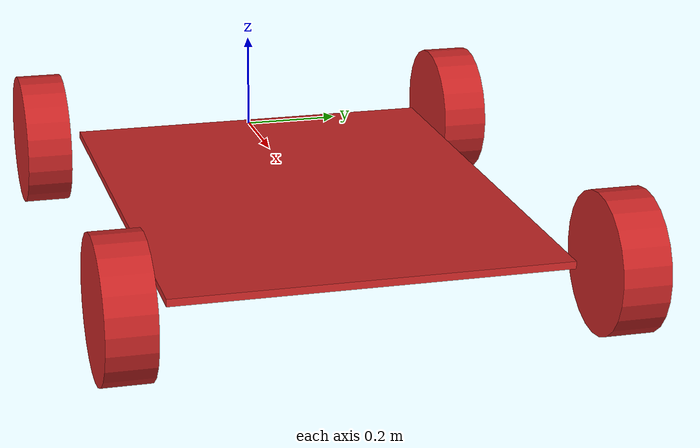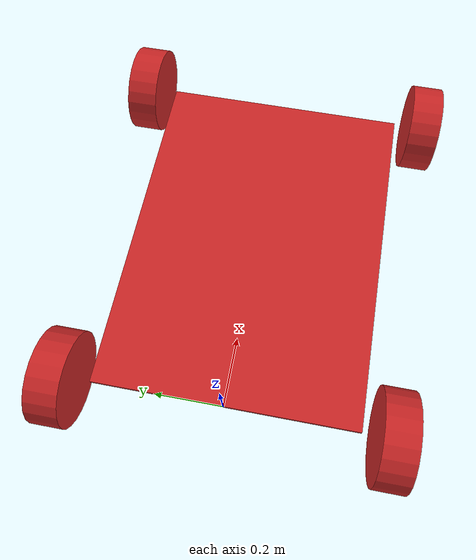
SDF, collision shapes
<?xml version="1.0" ?>
<sdf version='1.7'>
  <model name='gokart'>
    <link name='base_link'>
      <inertial>
        <pose>0.509065 0 0.019448 0 -0 0</pose>
        <mass>79.7</mass>
        <inertia>
          <ixx>6.47708</ixx>
          <ixy>2.77556e-16</ixy>
          <ixz>0.401551</ixz>
          <iyy>7.93038</iyy>
          <iyz>-2.3187e-18</iyz>
          <izz>13.3492</izz>
        </inertia>
      </inertial>
      <collision name='base_link_fixed_joint_lump__body_frame_link_collision'>
        <pose>0.525 0 0 0 -0 0</pose>
        <geometry>
          <box>
            <size>1.05 0.78 0.015</size>
          </box>
        </geometry>
        <surface>
          <contact>
            <ode/>
          </contact>
          <friction>
            <ode/>
          </friction>
        </surface>
      </collision>
      <collision name='base_link_fixed_joint_lump__wheel_fl_link_collision_1'>
        <pose>1.05 0.475 0 1.5708 -0 0</pose>
        <geometry>
          <cylinder>
            <length>0.09525</length>
            <radius>0.1397</radius>
          </cylinder>
        </geometry>
        <surface>
          <friction>
            <ode>
              <mu>1.3</mu>
              <mu2>1.3</mu2>
            </ode>
          </friction>
          <contact>
            <ode/>
          </contact>
        </surface>
      </collision>
      <collision name='base_link_fixed_joint_lump__wheel_fr_link_collision_2'>
        <pose>1.05 -0.475 0 1.5708 -0 0</pose>
        <geometry>
          <cylinder>
            <length>0.09525</length>
            <radius>0.1397</radius>
          </cylinder>
        </geometry>
        <surface>
          <friction>
            <ode>
              <mu>1.3</mu>
              <mu2>1.3</mu2>
            </ode>
          </friction>
          <contact>
            <ode/>
          </contact>
        </surface>
      </collision>
      <collision name='base_link_fixed_joint_lump__wheel_rl_link_collision_3'>
        <pose>0 0.475 0 1.5708 -0 0</pose>
        <geometry>
          <cylinder>
            <length>0.09525</length>
            <radius>0.1397</radius>
          </cylinder>
        </geometry>
      </collision>
      <collision name='base_link_fixed_joint_lump__wheel_rr_link_collision_4'>
        <pose>0 -0.475 0 1.5708 -0 0</pose>
        <geometry>
          <cylinder>
            <length>0.09525</length>
            <radius>0.1397</radius>
          </cylinder>
        </geometry>
      </collision>
      <visual name='base_link_fixed_joint_lump__body_frame_link_visual'>
        <pose>0 0 -0.015 0 -0 0</pose>
        <geometry>
          <mesh>
            <scale>1 1 1</scale>
            <uri>file:///home/michael/Desktop/projects/roar-gokart-ws/install/roar-urdf/share/roar-urdf/meshes/gokart/BodyV1.stl</uri>
          </mesh>
        </geometry>
        <material>
          <script>
            <name>Gazebo/Red</name>
            <uri>file://media/materials/scripts/gazebo.material</uri>
          </script>
        </material>
      </visual>
      <visual name='base_link_fixed_joint_lump__compute_front_left_stand_off_visual_1'>
        <pose>0.5 0.3 0.15 0 -0 0</pose>
        <geometry>
          <box>
            <size>0.1 0.1 0.3</size>
          </box>
        </geometry>
      </visual>
      <visual name='base_link_fixed_joint_lump__compute_front_right_stand_off_visual_2'>
        <pose>0.5 -0.3 0.15 0 -0 0</pose>
        <geometry>
          <box>
            <size>0.1 0.1 0.3</size>
          </box>
        </geometry>
      </visual>
      <visual name='base_link_fixed_joint_lump__compute_rear_left_stand_off_visual_3'>
        <pose>0 0.3 0.15 0 -0 0</pose>
        <geometry>
          <box>
            <size>0.1 0.1 0.3</size>
          </box>
        </geometry>
      </visual>
      <visual name='base_link_fixed_joint_lump__compute_rear_right_stand_off_visual_4'>
        <pose>0 -0.3 0.15 0 -0 0</pose>
        <geometry>
          <box>
            <size>0.1 0.1 0.3</size>
          </box>
        </geometry>
      </visual>
      <visual name='base_link_fixed_joint_lump__compute_platform_visual_5'>
        <pose>0.25 0 0.3 0 -0 0</pose>
        <geometry>
          <box>
            <size>0.7 0.7 0.01</size>
          </box>
        </geometry>
      </visual>
      <visual name='base_link_fixed_joint_lump__antenna_front_left_stand_off_visual_6'>
        <pose>0.15 0.3 0.4 0 -0 0</pose>
        <geometry>
          <box>
            <size>0.05 0.05 0.2</size>
          </box>
        </geometry>
      </visual>
      <visual name='base_link_fixed_joint_lump__antenna_front_right_stand_off_visual_7'>
        <pose>0.15 -0.3 0.4 0 -0 0</pose>
        <geometry>
          <box>
            <size>0.05 0.05 0.2</size>
          </box>
        </geometry>
      </visual>
      <visual name='base_link_fixed_joint_lump__antenna_rear_left_stand_off_visual_8'>
        <pose>-0.05 0.3 0.4 0 -0 0</pose>
        <geometry>
          <box>
            <size>0.05 0.05 0.2</size>
          </box>
        </geometry>
      </visual>
      <visual name='base_link_fixed_joint_lump__antenna_rear_right_stand_off_visual_9'>
        <pose>-0.05 -0.3 0.4 0 -0 0</pose>
        <geometry>
          <box>
            <size>0.05 0.05 0.2</size>
          </box>
        </geometry>
      </visual>
      <visual name='base_link_fixed_joint_lump__compute_units_link_visual_10'>
        <pose>0.35 0 0.31 0 -0 0</pose>
        <geometry>
          <box>
            <size>0.397 0.284 0.0259</size>
          </box>
        </geometry>
      </visual>
      <visual name='base_link_fixed_joint_lump__gps_platform_visual_11'>
        <pose>0.05 0 0.5 0 -0 0</pose>
        <geometry>
          <box>
            <size>0.3 0.7 0.01</size>
          </box>
        </geometry>
      </visual>
      <visual name='base_link_fixed_joint_lump__gnss_visual_12'>
        <pose>0.05 0 0.6 1.57 -0 1.57</pose>
        <geometry>
          <mesh>
            <scale>0.001 0.001 0.001</scale>
            <uri>file:///home/michael/Desktop/projects/roar-gokart-ws/install/roar-urdf/share/roar-urdf/meshes/gps_antenna.stl</uri>
          </mesh>
        </geometry>
      </visual>
      <visual name='base_link_fixed_joint_lump__perception_front_left_stand_off_visual_13'>
        <pose>1.05 0.2 0.15 0 -0 0</pose>
        <geometry>
          <box>
            <size>0.05 0.05 0.3</size>
          </box>
        </geometry>
      </visual>
      <visual name='base_link_fixed_joint_lump__perception_front_right_stand_off_visual_14'>
        <pose>1.05 -0.2 0.15 0 -0 0</pose>
        <geometry>
          <box>
            <size>0.05 0.05 0.3</size>
          </box>
        </geometry>
      </visual>
      <visual name='base_link_fixed_joint_lump__perception_rear_left_stand_off_visual_15'>
        <pose>0.8 0.2 0.15 0 -0 0</pose>
        <geometry>
          <box>
            <size>0.05 0.05 0.3</size>
          </box>
        </geometry>
      </visual>
      <visual name='base_link_fixed_joint_lump__perception_rear_right_stand_off_visual_16'>
        <pose>0.8 -0.2 0.15 0 -0 0</pose>
        <geometry>
          <box>
            <size>0.05 0.05 0.3</size>
          </box>
        </geometry>
      </visual>
      <visual name='base_link_fixed_joint_lump__sensor_platform_lower_visual_17'>
        <pose>0.925 0 0.15 0 -0 0</pose>
        <geometry>
          <box>
            <size>0.3 0.5 0.01</size>
          </box>
        </geometry>
      </visual>
      <visual name='base_link_fixed_joint_lump__sensor_platform_upper_visual_18'>
        <pose>0.925 0 0.3 0 -0 0</pose>
        <geometry>
          <box>
            <size>0.3 0.5 0.01</size>
          </box>
        </geometry>
      </visual>
      <visual name='base_link_fixed_joint_lump__center_lidar_visual_19'>
        <pose>1.075 0.04 0.31 1.57 0 3.14</pose>
        <geometry>
          <mesh>
            <scale>0.001 0.001 0.001</scale>
            <uri>file:///home/michael/Desktop/projects/roar-gokart-ws/install/roar-urdf/share/roar-urdf/meshes/livox_horizon.stl</uri>
          </mesh>
        </geometry>
      </visual>
      <visual name='base_link_fixed_joint_lump__camera_visual_20'>
        <pose>1.025 0 0.41 0 -0 1.57</pose>
        <geometry>
          <mesh>
            <scale>0.001 0.001 0.001</scale>
            <uri>file:///home/michael/Desktop/projects/roar-gokart-ws/install/roar-urdf/share/roar-urdf/meshes/ZED2i.stl</uri>
          </mesh>
        </geometry>
      </visual>
      <visual name='base_link_fixed_joint_lump__wheel_fl_link_visual_21'>
        <pose>1.05 0.57025 0 1.5708 -0 0</pose>
        <geometry>
          <mesh>
            <scale>1 1 1</scale>
            <uri>file:///home/michael/Desktop/projects/roar-gokart-ws/install/roar-urdf/share/roar-urdf/meshes/gokart/WheelV1.stl</uri>
          </mesh>
        </geometry>
        <material>
          <script>
            <name>Gazebo/Grey</name>
            <uri>file://media/materials/scripts/gazebo.material</uri>
          </script>
        </material>
      </visual>
      <visual name='base_link_fixed_joint_lump__wheel_fr_link_visual_22'>
        <pose>1.05 -0.37975 0 1.5708 -0 0</pose>
        <geometry>
          <mesh>
            <scale>1 1 1</scale>
            <uri>file:///home/michael/Desktop/projects/roar-gokart-ws/install/roar-urdf/share/roar-urdf/meshes/gokart/WheelV1.stl</uri>
          </mesh>
        </geometry>
        <material>
          <script>
            <name>Gazebo/Grey</name>
            <uri>file://media/materials/scripts/gazebo.material</uri>
          </script>
        </material>
      </visual>
      <visual name='base_link_fixed_joint_lump__wheel_rl_link_visual_23'>
        <pose>0 0.57025 0 1.5708 -0 0</pose>
        <geometry>
          <mesh>
            <scale>1 1 1</scale>
            <uri>file:///home/michael/Desktop/projects/roar-gokart-ws/install/roar-urdf/share/roar-urdf/meshes/gokart/WheelV1.stl</uri>
          </mesh>
        </geometry>
      </visual>
      <visual name='base_link_fixed_joint_lump__wheel_rr_link_visual_24'>
        <pose>0 -0.37975 0 1.5708 -0 0</pose>
        <geometry>
          <mesh>
            <scale>1 1 1</scale>
            <uri>file:///home/michael/Desktop/projects/roar-gokart-ws/install/roar-urdf/share/roar-urdf/meshes/gokart/WheelV1.stl</uri>
          </mesh>
        </geometry>
      </visual>
    </link>
    <static>0</static>
    <plugin name='simulator_gazebo_plugin' filename='libsimulator_gazebo_plugin.so'>
      <baseLinkName>base_link</baseLinkName>
      <mapFrameName>map</mapFrameName>
      <frontLeftSteeringJointName>wheel_fl_steer_joint</frontLeftSteeringJointName>
      <frontRightSteeringJointName>wheel_fr_steer_joint</frontRightSteeringJointName>
      <frontLeftMotorJointName>wheel_fl_joint</frontLeftMotorJointName>
      <frontRightMotorJointName>wheel_fr_joint</frontRightMotorJointName>
      <rearLeftMotorJointName>wheel_rl_joint</rearLeftMotorJointName>
      <rearRightMotorJointName>wheel_rr_joint</rearRightMotorJointName>
      <publishGroundTruthTransform>1</publishGroundTruthTransform>
      <publishJointStates>1</publishJointStates>
    </plugin>
  </model>
</sdf>
